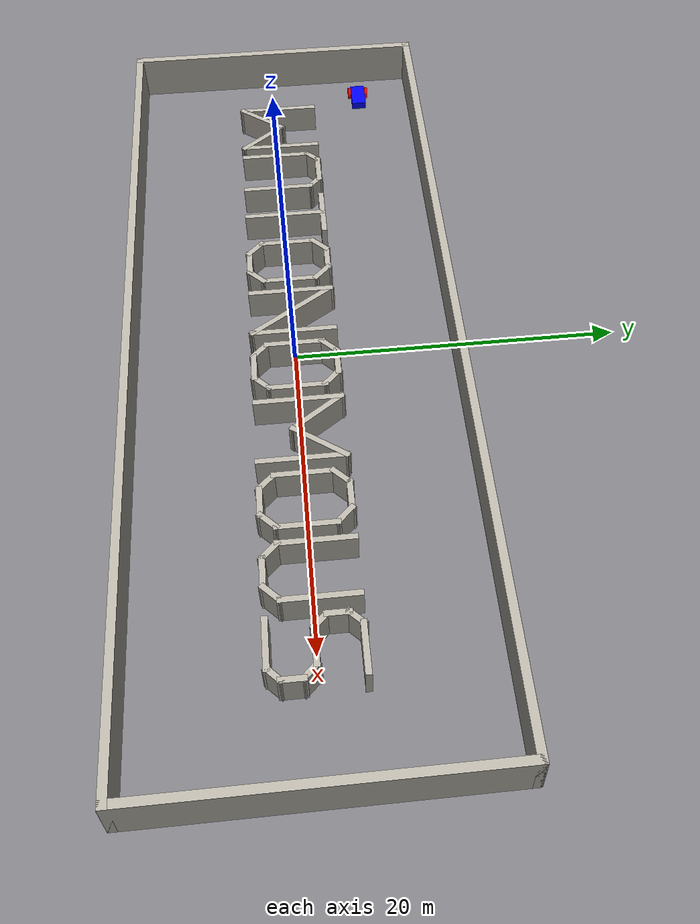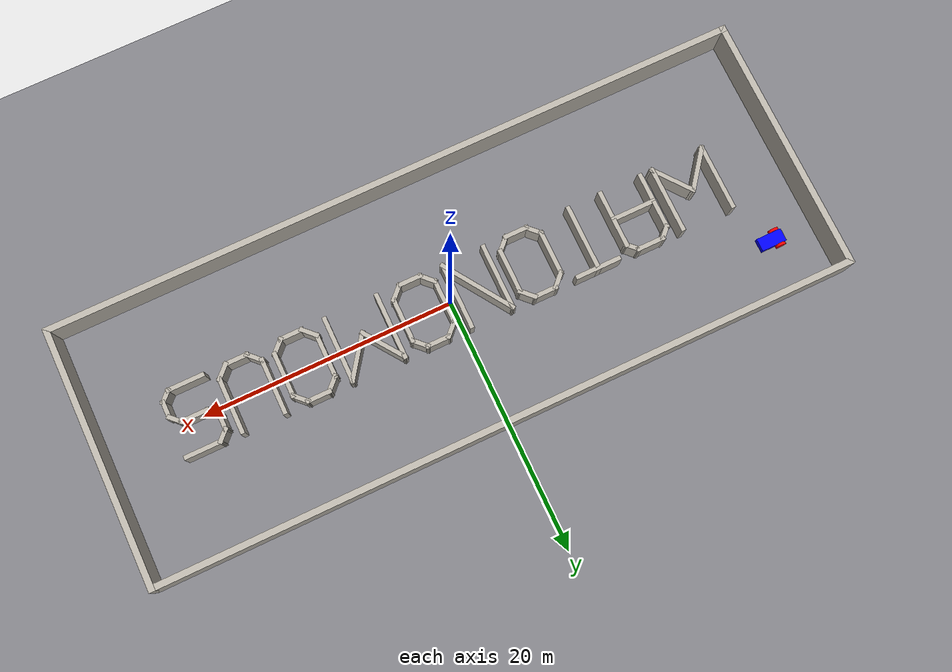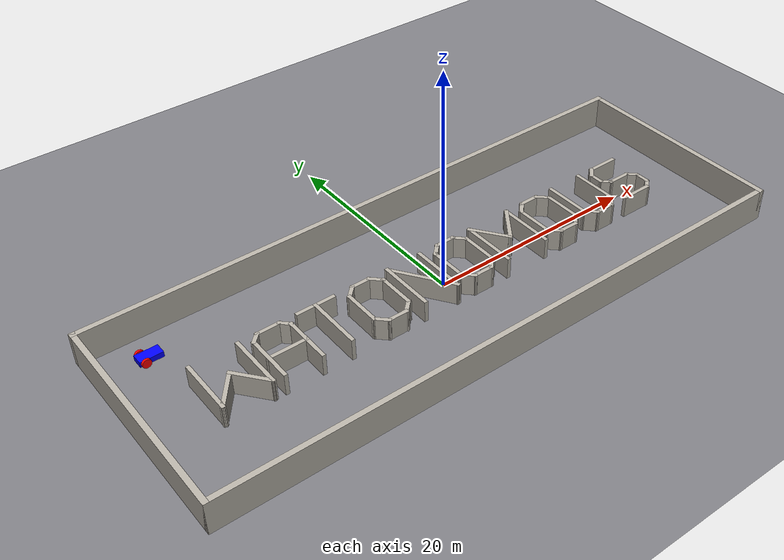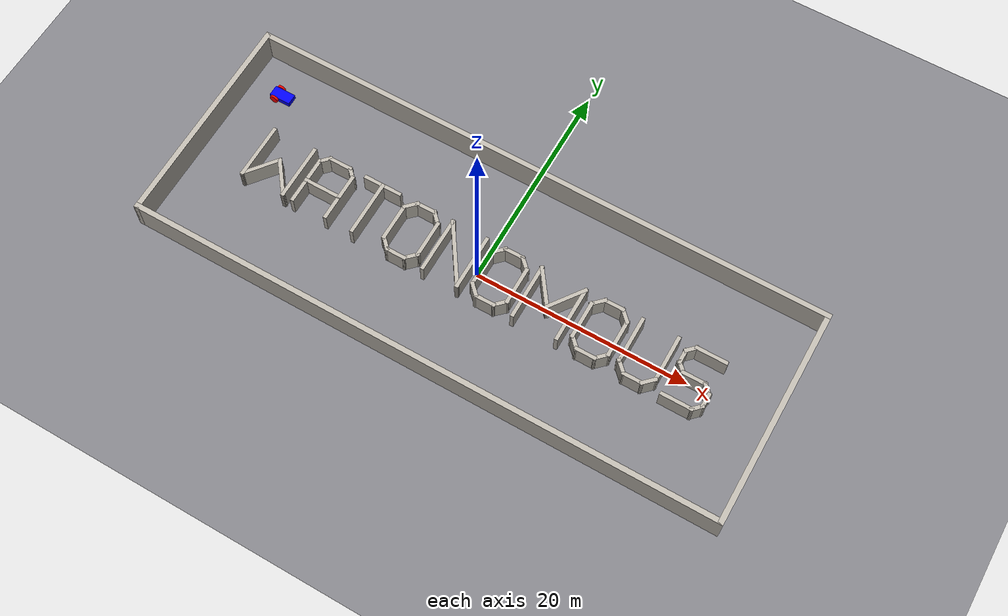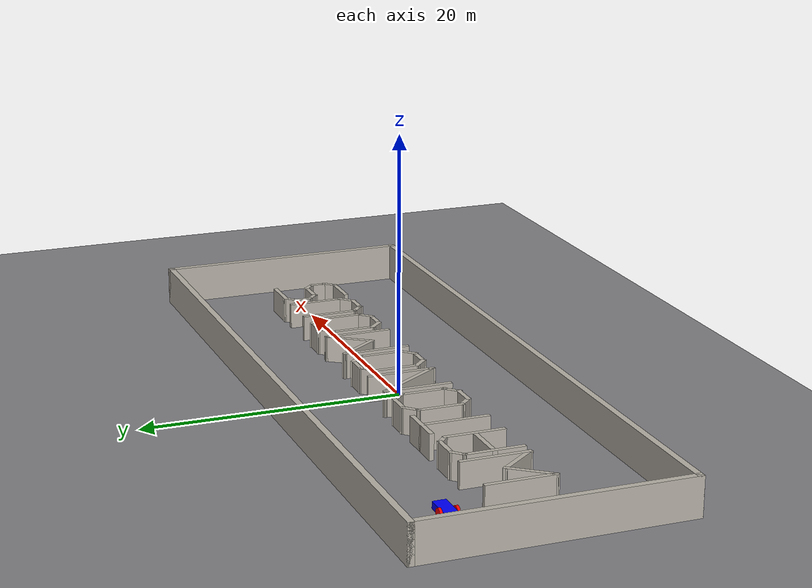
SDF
<?xml version="1.0" ?>
<!-- Generated by src/gazebo/tools/make_worlds.py from robot_env.sdf.
     Edit that script, not this file. -->
<sdf version="1.8">
    <world name="sim_world">
        <physics name="1ms" type="ignored">
            <max_step_size>0.001</max_step_size>
            <real_time_factor>1.0</real_time_factor>
        </physics>
        <plugin
            filename="ignition-gazebo-physics-system"
            name="ignition::gazebo::systems::Physics">
        </plugin>
        <plugin
            filename="ignition-gazebo-user-commands-system"
            name="ignition::gazebo::systems::UserCommands">
        </plugin>
        <plugin
            filename="ignition-gazebo-scene-broadcaster-system"
            name="ignition::gazebo::systems::SceneBroadcaster">
        </plugin>
        <plugin filename="ignition-gazebo-imu-system"
                name="ignition::gazebo::systems::Imu">
        </plugin>
        <plugin filename="ignition-gazebo-sensors-system"
                name="ignition::gazebo::systems::Sensors">
            <render_engine>ogre2</render_engine>
        </plugin>
        <plugin filename="ignition-gazebo-contact-system"
                name="ignition::gazebo::systems::Contact">
        </plugin>
        <gui fullscreen="0">
          <!-- 3D scene -->
          <plugin filename="MinimalScene" name="3D View">
          <gz-gui>
            <title>3D View</title>
            <property type="bool" key="showTitleBar">false</property>
            <property type="string" key="state">docked</property>
          </gz-gui>

          <engine>ogre2</engine>
          <scene>scene</scene>
          <ambient_light>0.4 0.4 0.4</ambient_light>
          <background_color>0.8 0.8 0.8</background_color>
          <camera_pose>-6 0 6 0 0.5 0</camera_pose>
          <camera_clip>
            <near>0.25</near>
            <far>25000</far>
          </camera_clip>
          </plugin>

          <!-- Plugins that add functionality to the scene -->
          <plugin filename="EntityContextMenuPlugin" name="Entity context menu">
          <gz-gui>
            <property key="state" type="string">floating</property>
            <property key="width" type="double">5</property>
            <property key="height" type="double">5</property>
            <property key="showTitleBar" type="bool">false</property>
          </gz-gui>
          </plugin>
          <plugin filename="GzSceneManager" name="Scene Manager">
          <gz-gui>
            <property key="resizable" type="bool">false</property>
            <property key="width" type="double">5</property>
            <property key="height" type="double">5</property>
            <property key="state" type="string">floating</property>
            <property key="showTitleBar" type="bool">false</property>
          </gz-gui>
          </plugin>
          <plugin filename="InteractiveViewControl" name="Interactive view control">
          <gz-gui>
            <property key="resizable" type="bool">false</property>
            <property key="width" type="double">5</property>
            <property key="height" type="double">5</property>
            <property key="state" type="string">floating</property>
            <property key="showTitleBar" type="bool">false</property>
          </gz-gui>
          </plugin>
          <plugin filename="CameraTracking" name="Camera Tracking">
          <gz-gui>
            <property key="resizable" type="bool">false</property>
            <property key="width" type="double">5</property>
            <property key="height" type="double">5</property>
            <property key="state" type="string">floating</property>
            <property key="showTitleBar" type="bool">false</property>
          </gz-gui>
          </plugin>
          <plugin filename="MarkerManager" name="Marker manager">
          <gz-gui>
            <property key="resizable" type="bool">false</property>
            <property key="width" type="double">5</property>
            <property key="height" type="double">5</property>
            <property key="state" type="string">floating</property>
            <property key="showTitleBar" type="bool">false</property>
          </gz-gui>
          </plugin>
          <plugin filename="SelectEntities" name="Select Entities">
          <gz-gui>
            <anchors target="Select entities">
              <line own="right" target="right"/>
              <line own="top" target="top"/>
            </anchors>
            <property key="resizable" type="bool">false</property>
            <property key="width" type="double">5</property>
            <property key="height" type="double">5</property>
            <property key="state" type="string">floating</property>
            <property key="showTitleBar" type="bool">false</property>
          </gz-gui>
          </plugin>
          <plugin filename="VisualizationCapabilities" name="Visualization Capabilities">
          <gz-gui>
            <property key="resizable" type="bool">false</property>
            <property key="width" type="double">5</property>
            <property key="height" type="double">5</property>
            <property key="state" type="string">floating</property>
            <property key="showTitleBar" type="bool">false</property>
          </gz-gui>
          </plugin>

          <plugin filename="Spawn" name="Spawn Entities">
          <gz-gui>
            <anchors target="Select entities">
              <line own="right" target="right"/>
              <line own="top" target="top"/>
            </anchors>
            <property key="resizable" type="bool">false</property>
            <property key="width" type="double">5</property>
            <property key="height" type="double">5</property>
            <property key="state" type="string">floating</property>
            <property key="showTitleBar" type="bool">false</property>
          </gz-gui>
          </plugin>

          <!-- World control -->
          <plugin filename="WorldControl" name="World control">
          <gz-gui>
            <title>World control</title>
            <property type="bool" key="showTitleBar">false</property>
            <property type="bool" key="resizable">false</property>
            <property type="double" key="height">72</property>
            <property type="double" key="width">121</property>
            <property type="double" key="z">1</property>

            <property type="string" key="state">floating</property>
            <anchors target="3D View">
              <line own="left" target="left"/>
              <line own="bottom" target="bottom"/>
            </anchors>
          </gz-gui>

          <play_pause>true</play_pause>
          <step>true</step>
          <start_paused>true</start_paused>
          <use_event>true</use_event>

          </plugin>

          <!-- World statistics -->
          <plugin filename="WorldStats" name="World stats">
          <gz-gui>
            <title>World stats</title>
            <property type="bool" key="showTitleBar">false</property>
            <property type="bool" key="resizable">false</property>
            <property type="double" key="height">110</property>
            <property type="double" key="width">290</property>
            <property type="double" key="z">1</property>

            <property type="string" key="state">floating</property>
            <anchors target="3D View">
              <line own="right" target="right"/>
              <line own="bottom" target="bottom"/>
            </anchors>
          </gz-gui>

          <sim_time>true</sim_time>
          <real_time>true</real_time>
          <real_time_factor>true</real_time_factor>
          <iterations>true</iterations>
          </plugin>

          <!-- Insert simple shapes -->
          <plugin filename="Shapes" name="Shapes">
          <gz-gui>
            <property key="resizable" type="bool">false</property>
            <property key="x" type="double">0</property>
            <property key="y" type="double">0</property>
            <property key="width" type="double">250</property>
            <property key="height" type="double">50</property>
            <property key="state" type="string">floating</property>
            <property key="showTitleBar" type="bool">false</property>
            <property key="cardBackground" type="string">#666666</property>
          </gz-gui>
          </plugin>

          <!-- Insert lights -->
          <plugin filename="Lights" name="Lights">
          <gz-gui>
            <property key="resizable" type="bool">false</property>
            <property key="x" type="double">250</property>
            <property key="y" type="double">0</property>
            <property key="width" type="double">150</property>
            <property key="height" type="double">50</property>
            <property key="state" type="string">floating</property>
            <property key="showTitleBar" type="bool">false</property>
            <property key="cardBackground" type="string">#666666</property>
          </gz-gui>
          </plugin>

          <!-- Translate / rotate -->
          <plugin filename="TransformControl" name="Transform control">
          <gz-gui>
            <property key="resizable" type="bool">false</property>
            <property key="x" type="double">0</property>
            <property key="y" type="double">50</property>
            <property key="width" type="double">250</property>
            <property key="height" type="double">50</property>
            <property key="state" type="string">floating</property>
            <property key="showTitleBar" type="bool">false</property>
            <property key="cardBackground" type="string">#777777</property>
          </gz-gui>
          </plugin>

          <!-- Screenshot -->
          <plugin filename="Screenshot" name="Screenshot">
          <gz-gui>
            <property key="resizable" type="bool">false</property>
            <property key="x" type="double">250</property>
            <property key="y" type="double">50</property>
            <property key="width" type="double">50</property>
            <property key="height" type="double">50</property>
            <property key="state" type="string">floating</property>
            <property key="showTitleBar" type="bool">false</property>
            <property key="cardBackground" type="string">#777777</property>
          </gz-gui>
          </plugin>

          <!-- Video recorder -->
          <plugin filename="VideoRecorder" name="VideoRecorder">
          <gz-gui>
            <property key="resizable" type="bool">false</property>
            <property key="x" type="double">300</property>
            <property key="y" type="double">50</property>
            <property key="width" type="double">50</property>
            <property key="height" type="double">50</property>
            <property key="state" type="string">floating</property>
            <property key="showTitleBar" type="bool">false</property>
            <property key="cardBackground" type="string">#777777</property>
          </gz-gui>

          <record_video>
            <use_sim_time>true</use_sim_time>
            <lockstep>false</lockstep>
            <bitrate>4000000</bitrate>
          </record_video>
          </plugin>

          <!-- Inspector -->
          <plugin filename="ComponentInspector" name="Component inspector">
          <gz-gui>
            <property type="string" key="state">docked_collapsed</property>
          </gz-gui>
          </plugin>

          <!-- Entity tree -->
          <plugin filename="EntityTree" name="Entity tree">
          <gz-gui>
            <property type="string" key="state">docked_collapsed</property>
          </gz-gui>
          </plugin>

          <!-- View angle -->
          <plugin filename="ViewAngle" name="View angle">
          <gz-gui>
            <property type="string" key="state">docked_collapsed</property>
          </gz-gui>
          </plugin>

            <!-- KeyPublisher plugin-->
            <plugin filename="KeyPublisher" name="Key Publisher"/>

        </gui>

        <light type="directional" name="sun">
            <cast_shadows>true</cast_shadows>
            <pose>0 0 10 0 0 0</pose>
            <diffuse>0.8 0.8 0.8 1</diffuse>
            <specular>0.2 0.2 0.2 1</specular>
            <attenuation>
                <range>1000</range>
                <constant>0.9</constant>
                <linear>0.01</linear>
                <quadratic>0.001</quadratic>
            </attenuation>
            <direction>-0.5 0.1 -0.9</direction>
        </light>

                <model name="environment">
            <static>true</static>
            <link name="ground">
                <collision name="collision"><geometry><plane><normal>0 0 1</normal></plane></geometry></collision>
                <visual name="visual">
                    <geometry><plane><normal>0 0 1</normal><size>100 100</size></plane></geometry>
                    <material><ambient>0.5 0.5 0.52 1</ambient><diffuse>0.5 0.5 0.52 1</diffuse><specular>0.1 0.1 0.1 1</specular></material>
                </visual>
            </link>
        </model>

        <model name='wall_north'>
            <static>true</static>
            <pose>0 10 1.5 0 0 0</pose>
            <link name='link'>
                <visual name='visual'><geometry><box><size>55.5 0.5 3</size></box></geometry><material><ambient>0.72 0.7 0.66 1</ambient><diffuse>0.72 0.7 0.66 1</diffuse><specular>0.1 0.1 0.1 1</specular></material></visual>
                <collision name='collision'><geometry><box><size>55.5 0.5 3</size></box></geometry></collision>
            </link>
        </model>

        <model name='wall_south'>
            <static>true</static>
            <pose>0 -10 1.5 0 0 0</pose>
            <link name='link'>
                <visual name='visual'><geometry><box><size>55.5 0.5 3</size></box></geometry><material><ambient>0.72 0.7 0.66 1</ambient><diffuse>0.72 0.7 0.66 1</diffuse><specular>0.1 0.1 0.1 1</specular></material></visual>
                <collision name='collision'><geometry><box><size>55.5 0.5 3</size></box></geometry></collision>
            </link>
        </model>

        <model name='wall_east'>
            <static>true</static>
            <pose>27.5 0 1.5 0 0 0</pose>
            <link name='link'>
                <visual name='visual'><geometry><box><size>0.5 20.5 3</size></box></geometry><material><ambient>0.72 0.7 0.66 1</ambient><diffuse>0.72 0.7 0.66 1</diffuse><specular>0.1 0.1 0.1 1</specular></material></visual>
                <collision name='collision'><geometry><box><size>0.5 20.5 3</size></box></geometry></collision>
            </link>
        </model>

        <model name='wall_west'>
            <static>true</static>
            <pose>-27.5 0 1.5 0 0 0</pose>
            <link name='link'>
                <visual name='visual'><geometry><box><size>0.5 20.5 3</size></box></geometry><material><ambient>0.72 0.7 0.66 1</ambient><diffuse>0.72 0.7 0.66 1</diffuse><specular>0.1 0.1 0.1 1</specular></material></visual>
                <collision name='collision'><geometry><box><size>0.5 20.5 3</size></box></geometry></collision>
            </link>
        </model>

        <model name='letter0_W_0_0'>
            <static>true</static>
            <pose>-22 0 1 0 0 -1.5708</pose>
            <link name='link'>
                <visual name='visual'><geometry><box><size>5.35 0.35 2</size></box></geometry><material><ambient>0.72 0.7 0.66 1</ambient><diffuse>0.72 0.7 0.66 1</diffuse><specular>0.1 0.1 0.1 1</specular></material></visual>
                <collision name='collision'><geometry><box><size>5.35 0.35 2</size></box></geometry></collision>
            </link>
        </model>

        <model name='letter0_W_0_1'>
            <static>true</static>
            <pose>-20.958 -1.1667 1 0 0 0.90759</pose>
            <link name='link'>
                <visual name='visual'><geometry><box><size>3.734 0.35 2</size></box></geometry><material><ambient>0.72 0.7 0.66 1</ambient><diffuse>0.72 0.7 0.66 1</diffuse><specular>0.1 0.1 0.1 1</specular></material></visual>
                <collision name='collision'><geometry><box><size>3.734 0.35 2</size></box></geometry></collision>
            </link>
        </model>

        <model name='letter0_W_0_2'>
            <static>true</static>
            <pose>-18.875 -1.1667 1 0 0 -0.90759</pose>
            <link name='link'>
                <visual name='visual'><geometry><box><size>3.734 0.35 2</size></box></geometry><material><ambient>0.72 0.7 0.66 1</ambient><diffuse>0.72 0.7 0.66 1</diffuse><specular>0.1 0.1 0.1 1</specular></material></visual>
                <collision name='collision'><geometry><box><size>3.734 0.35 2</size></box></geometry></collision>
            </link>
        </model>

        <model name='letter0_W_0_3'>
            <static>true</static>
            <pose>-17.833 0 1 0 0 1.5708</pose>
            <link name='link'>
                <visual name='visual'><geometry><box><size>5.35 0.35 2</size></box></geometry><material><ambient>0.72 0.7 0.66 1</ambient><diffuse>0.72 0.7 0.66 1</diffuse><specular>0.1 0.1 0.1 1</specular></material></visual>
                <collision name='collision'><geometry><box><size>5.35 0.35 2</size></box></geometry></collision>
            </link>
        </model>

        <model name='letter1_A_0_0'>
            <static>true</static>
            <pose>-16.833 -0.33333 1 0 0 1.5708</pose>
            <link name='link'>
                <visual name='visual'><geometry><box><size>4.6833 0.35 2</size></box></geometry><material><ambient>0.72 0.7 0.66 1</ambient><diffuse>0.72 0.7 0.66 1</diffuse><specular>0.1 0.1 0.1 1</specular></material></visual>
                <collision name='collision'><geometry><box><size>4.6833 0.35 2</size></box></geometry></collision>
            </link>
        </model>

        <model name='letter1_A_0_1'>
            <static>true</static>
            <pose>-16.5 2.1667 1 0 0 0.7854</pose>
            <link name='link'>
                <visual name='visual'><geometry><box><size>1.2928 0.35 2</size></box></geometry><material><ambient>0.72 0.7 0.66 1</ambient><diffuse>0.72 0.7 0.66 1</diffuse><specular>0.1 0.1 0.1 1</specular></material></visual>
                <collision name='collision'><geometry><box><size>1.2928 0.35 2</size></box></geometry></collision>
            </link>
        </model>

        <model name='letter1_A_0_2'>
            <static>true</static>
            <pose>-15.167 2.5 1 0 0 0</pose>
            <link name='link'>
                <visual name='visual'><geometry><box><size>2.35 0.35 2</size></box></geometry><material><ambient>0.72 0.7 0.66 1</ambient><diffuse>0.72 0.7 0.66 1</diffuse><specular>0.1 0.1 0.1 1</specular></material></visual>
                <collision name='collision'><geometry><box><size>2.35 0.35 2</size></box></geometry></collision>
            </link>
        </model>

        <model name='letter1_A_0_3'>
            <static>true</static>
            <pose>-13.833 2.1667 1 0 0 -0.7854</pose>
            <link name='link'>
                <visual name='visual'><geometry><box><size>1.2928 0.35 2</size></box></geometry><material><ambient>0.72 0.7 0.66 1</ambient><diffuse>0.72 0.7 0.66 1</diffuse><specular>0.1 0.1 0.1 1</specular></material></visual>
                <collision name='collision'><geometry><box><size>1.2928 0.35 2</size></box></geometry></collision>
            </link>
        </model>

        <model name='letter1_A_0_4'>
            <static>true</static>
            <pose>-13.5 -0.33333 1 0 0 -1.5708</pose>
            <link name='link'>
                <visual name='visual'><geometry><box><size>4.6833 0.35 2</size></box></geometry><material><ambient>0.72 0.7 0.66 1</ambient><diffuse>0.72 0.7 0.66 1</diffuse><specular>0.1 0.1 0.1 1</specular></material></visual>
                <collision name='collision'><geometry><box><size>4.6833 0.35 2</size></box></geometry></collision>
            </link>
        </model>

        <model name='letter1_A_1_0'>
            <static>true</static>
            <pose>-15.167 -0.33333 1 0 0 0</pose>
            <link name='link'>
                <visual name='visual'><geometry><box><size>3.6833 0.35 2</size></box></geometry><material><ambient>0.72 0.7 0.66 1</ambient><diffuse>0.72 0.7 0.66 1</diffuse><specular>0.1 0.1 0.1 1</specular></material></visual>
                <collision name='collision'><geometry><box><size>3.6833 0.35 2</size></box></geometry></collision>
            </link>
        </model>

        <model name='letter2_T_0_0'>
            <static>true</static>
            <pose>-10.833 2.5 1 0 0 0</pose>
            <link name='link'>
                <visual name='visual'><geometry><box><size>3.6833 0.35 2</size></box></geometry><material><ambient>0.72 0.7 0.66 1</ambient><diffuse>0.72 0.7 0.66 1</diffuse><specular>0.1 0.1 0.1 1</specular></material></visual>
                <collision name='collision'><geometry><box><size>3.6833 0.35 2</size></box></geometry></collision>
            </link>
        </model>

        <model name='letter2_T_1_0'>
            <static>true</static>
            <pose>-10.833 0 1 0 0 -1.5708</pose>
            <link name='link'>
                <visual name='visual'><geometry><box><size>5.35 0.35 2</size></box></geometry><material><ambient>0.72 0.7 0.66 1</ambient><diffuse>0.72 0.7 0.66 1</diffuse><specular>0.1 0.1 0.1 1</specular></material></visual>
                <collision name='collision'><geometry><box><size>5.35 0.35 2</size></box></geometry></collision>
            </link>
        </model>

        <model name='letter3_O_0_0'>
            <static>true</static>
            <pose>-6.5 -2.5 1 0 0 0</pose>
            <link name='link'>
                <visual name='visual'><geometry><box><size>2.0167 0.35 2</size></box></geometry><material><ambient>0.72 0.7 0.66 1</ambient><diffuse>0.72 0.7 0.66 1</diffuse><specular>0.1 0.1 0.1 1</specular></material></visual>
                <collision name='collision'><geometry><box><size>2.0167 0.35 2</size></box></geometry></collision>
            </link>
        </model>

        <model name='letter3_O_0_1'>
            <static>true</static>
            <pose>-5.25 -2.0833 1 0 0 0.7854</pose>
            <link name='link'>
                <visual name='visual'><geometry><box><size>1.5285 0.35 2</size></box></geometry><material><ambient>0.72 0.7 0.66 1</ambient><diffuse>0.72 0.7 0.66 1</diffuse><specular>0.1 0.1 0.1 1</specular></material></visual>
                <collision name='collision'><geometry><box><size>1.5285 0.35 2</size></box></geometry></collision>
            </link>
        </model>

        <model name='letter3_O_0_2'>
            <static>true</static>
            <pose>-4.8333 0 1 0 0 1.5708</pose>
            <link name='link'>
                <visual name='visual'><geometry><box><size>3.6833 0.35 2</size></box></geometry><material><ambient>0.72 0.7 0.66 1</ambient><diffuse>0.72 0.7 0.66 1</diffuse><specular>0.1 0.1 0.1 1</specular></material></visual>
                <collision name='collision'><geometry><box><size>3.6833 0.35 2</size></box></geometry></collision>
            </link>
        </model>

        <model name='letter3_O_0_3'>
            <static>true</static>
            <pose>-5.25 2.0833 1 0 0 2.3562</pose>
            <link name='link'>
                <visual name='visual'><geometry><box><size>1.5285 0.35 2</size></box></geometry><material><ambient>0.72 0.7 0.66 1</ambient><diffuse>0.72 0.7 0.66 1</diffuse><specular>0.1 0.1 0.1 1</specular></material></visual>
                <collision name='collision'><geometry><box><size>1.5285 0.35 2</size></box></geometry></collision>
            </link>
        </model>

        <model name='letter3_O_0_4'>
            <static>true</static>
            <pose>-6.5 2.5 1 0 0 3.1416</pose>
            <link name='link'>
                <visual name='visual'><geometry><box><size>2.0167 0.35 2</size></box></geometry><material><ambient>0.72 0.7 0.66 1</ambient><diffuse>0.72 0.7 0.66 1</diffuse><specular>0.1 0.1 0.1 1</specular></material></visual>
                <collision name='collision'><geometry><box><size>2.0167 0.35 2</size></box></geometry></collision>
            </link>
        </model>

        <model name='letter3_O_0_5'>
            <static>true</static>
            <pose>-7.75 2.0833 1 0 0 -2.3562</pose>
            <link name='link'>
                <visual name='visual'><geometry><box><size>1.5285 0.35 2</size></box></geometry><material><ambient>0.72 0.7 0.66 1</ambient><diffuse>0.72 0.7 0.66 1</diffuse><specular>0.1 0.1 0.1 1</specular></material></visual>
                <collision name='collision'><geometry><box><size>1.5285 0.35 2</size></box></geometry></collision>
            </link>
        </model>

        <model name='letter3_O_0_6'>
            <static>true</static>
            <pose>-8.1667 0 1 0 0 -1.5708</pose>
            <link name='link'>
                <visual name='visual'><geometry><box><size>3.6833 0.35 2</size></box></geometry><material><ambient>0.72 0.7 0.66 1</ambient><diffuse>0.72 0.7 0.66 1</diffuse><specular>0.1 0.1 0.1 1</specular></material></visual>
                <collision name='collision'><geometry><box><size>3.6833 0.35 2</size></box></geometry></collision>
            </link>
        </model>

        <model name='letter3_O_0_7'>
            <static>true</static>
            <pose>-7.75 -2.0833 1 0 0 -0.7854</pose>
            <link name='link'>
                <visual name='visual'><geometry><box><size>1.5285 0.35 2</size></box></geometry><material><ambient>0.72 0.7 0.66 1</ambient><diffuse>0.72 0.7 0.66 1</diffuse><specular>0.1 0.1 0.1 1</specular></material></visual>
                <collision name='collision'><geometry><box><size>1.5285 0.35 2</size></box></geometry></collision>
            </link>
        </model>

        <model name='letter4_N_0_0'>
            <static>true</static>
            <pose>-3.8333 0 1 0 0 1.5708</pose>
            <link name='link'>
                <visual name='visual'><geometry><box><size>5.35 0.35 2</size></box></geometry><material><ambient>0.72 0.7 0.66 1</ambient><diffuse>0.72 0.7 0.66 1</diffuse><specular>0.1 0.1 0.1 1</specular></material></visual>
                <collision name='collision'><geometry><box><size>5.35 0.35 2</size></box></geometry></collision>
            </link>
        </model>

        <model name='letter4_N_0_1'>
            <static>true</static>
            <pose>-2.1667 0 1 0 0 -0.98279</pose>
            <link name='link'>
                <visual name='visual'><geometry><box><size>6.3593 0.35 2</size></box></geometry><material><ambient>0.72 0.7 0.66 1</ambient><diffuse>0.72 0.7 0.66 1</diffuse><specular>0.1 0.1 0.1 1</specular></material></visual>
                <collision name='collision'><geometry><box><size>6.3593 0.35 2</size></box></geometry></collision>
            </link>
        </model>

        <model name='letter4_N_0_2'>
            <static>true</static>
            <pose>-0.5 0 1 0 0 1.5708</pose>
            <link name='link'>
                <visual name='visual'><geometry><box><size>5.35 0.35 2</size></box></geometry><material><ambient>0.72 0.7 0.66 1</ambient><diffuse>0.72 0.7 0.66 1</diffuse><specular>0.1 0.1 0.1 1</specular></material></visual>
                <collision name='collision'><geometry><box><size>5.35 0.35 2</size></box></geometry></collision>
            </link>
        </model>

        <model name='letter5_O_0_0'>
            <static>true</static>
            <pose>2.1667 -2.5 1 0 0 0</pose>
            <link name='link'>
                <visual name='visual'><geometry><box><size>2.0167 0.35 2</size></box></geometry><material><ambient>0.72 0.7 0.66 1</ambient><diffuse>0.72 0.7 0.66 1</diffuse><specular>0.1 0.1 0.1 1</specular></material></visual>
                <collision name='collision'><geometry><box><size>2.0167 0.35 2</size></box></geometry></collision>
            </link>
        </model>

        <model name='letter5_O_0_1'>
            <static>true</static>
            <pose>3.4167 -2.0833 1 0 0 0.7854</pose>
            <link name='link'>
                <visual name='visual'><geometry><box><size>1.5285 0.35 2</size></box></geometry><material><ambient>0.72 0.7 0.66 1</ambient><diffuse>0.72 0.7 0.66 1</diffuse><specular>0.1 0.1 0.1 1</specular></material></visual>
                <collision name='collision'><geometry><box><size>1.5285 0.35 2</size></box></geometry></collision>
            </link>
        </model>

        <model name='letter5_O_0_2'>
            <static>true</static>
            <pose>3.8333 0 1 0 0 1.5708</pose>
            <link name='link'>
                <visual name='visual'><geometry><box><size>3.6833 0.35 2</size></box></geometry><material><ambient>0.72 0.7 0.66 1</ambient><diffuse>0.72 0.7 0.66 1</diffuse><specular>0.1 0.1 0.1 1</specular></material></visual>
                <collision name='collision'><geometry><box><size>3.6833 0.35 2</size></box></geometry></collision>
            </link>
        </model>

        <model name='letter5_O_0_3'>
            <static>true</static>
            <pose>3.4167 2.0833 1 0 0 2.3562</pose>
            <link name='link'>
                <visual name='visual'><geometry><box><size>1.5285 0.35 2</size></box></geometry><material><ambient>0.72 0.7 0.66 1</ambient><diffuse>0.72 0.7 0.66 1</diffuse><specular>0.1 0.1 0.1 1</specular></material></visual>
                <collision name='collision'><geometry><box><size>1.5285 0.35 2</size></box></geometry></collision>
            </link>
        </model>

        <model name='letter5_O_0_4'>
            <static>true</static>
            <pose>2.1667 2.5 1 0 0 3.1416</pose>
            <link name='link'>
                <visual name='visual'><geometry><box><size>2.0167 0.35 2</size></box></geometry><material><ambient>0.72 0.7 0.66 1</ambient><diffuse>0.72 0.7 0.66 1</diffuse><specular>0.1 0.1 0.1 1</specular></material></visual>
                <collision name='collision'><geometry><box><size>2.0167 0.35 2</size></box></geometry></collision>
            </link>
        </model>

        <model name='letter5_O_0_5'>
            <static>true</static>
            <pose>0.91667 2.0833 1 0 0 -2.3562</pose>
            <link name='link'>
                <visual name='visual'><geometry><box><size>1.5285 0.35 2</size></box></geometry><material><ambient>0.72 0.7 0.66 1</ambient><diffuse>0.72 0.7 0.66 1</diffuse><specular>0.1 0.1 0.1 1</specular></material></visual>
                <collision name='collision'><geometry><box><size>1.5285 0.35 2</size></box></geometry></collision>
            </link>
        </model>

        <model name='letter5_O_0_6'>
            <static>true</static>
            <pose>0.5 0 1 0 0 -1.5708</pose>
            <link name='link'>
                <visual name='visual'><geometry><box><size>3.6833 0.35 2</size></box></geometry><material><ambient>0.72 0.7 0.66 1</ambient><diffuse>0.72 0.7 0.66 1</diffuse><specular>0.1 0.1 0.1 1</specular></material></visual>
                <collision name='collision'><geometry><box><size>3.6833 0.35 2</size></box></geometry></collision>
            </link>
        </model>

        <model name='letter5_O_0_7'>
            <static>true</static>
            <pose>0.91667 -2.0833 1 0 0 -0.7854</pose>
            <link name='link'>
                <visual name='visual'><geometry><box><size>1.5285 0.35 2</size></box></geometry><material><ambient>0.72 0.7 0.66 1</ambient><diffuse>0.72 0.7 0.66 1</diffuse><specular>0.1 0.1 0.1 1</specular></material></visual>
                <collision name='collision'><geometry><box><size>1.5285 0.35 2</size></box></geometry></collision>
            </link>
        </model>

        <model name='letter6_M_0_0'>
            <static>true</static>
            <pose>4.8333 0 1 0 0 1.5708</pose>
            <link name='link'>
                <visual name='visual'><geometry><box><size>5.35 0.35 2</size></box></geometry><material><ambient>0.72 0.7 0.66 1</ambient><diffuse>0.72 0.7 0.66 1</diffuse><specular>0.1 0.1 0.1 1</specular></material></visual>
                <collision name='collision'><geometry><box><size>5.35 0.35 2</size></box></geometry></collision>
            </link>
        </model>

        <model name='letter6_M_0_1'>
            <static>true</static>
            <pose>5.875 1.0417 1 0 0 -0.95055</pose>
            <link name='link'>
                <visual name='visual'><geometry><box><size>3.9343 0.35 2</size></box></geometry><material><ambient>0.72 0.7 0.66 1</ambient><diffuse>0.72 0.7 0.66 1</diffuse><specular>0.1 0.1 0.1 1</specular></material></visual>
                <collision name='collision'><geometry><box><size>3.9343 0.35 2</size></box></geometry></collision>
            </link>
        </model>

        <model name='letter6_M_0_2'>
            <static>true</static>
            <pose>7.9583 1.0417 1 0 0 0.95055</pose>
            <link name='link'>
                <visual name='visual'><geometry><box><size>3.9343 0.35 2</size></box></geometry><material><ambient>0.72 0.7 0.66 1</ambient><diffuse>0.72 0.7 0.66 1</diffuse><specular>0.1 0.1 0.1 1</specular></material></visual>
                <collision name='collision'><geometry><box><size>3.9343 0.35 2</size></box></geometry></collision>
            </link>
        </model>

        <model name='letter6_M_0_3'>
            <static>true</static>
            <pose>9 0 1 0 0 -1.5708</pose>
            <link name='link'>
                <visual name='visual'><geometry><box><size>5.35 0.35 2</size></box></geometry><material><ambient>0.72 0.7 0.66 1</ambient><diffuse>0.72 0.7 0.66 1</diffuse><specular>0.1 0.1 0.1 1</specular></material></visual>
                <collision name='collision'><geometry><box><size>5.35 0.35 2</size></box></geometry></collision>
            </link>
        </model>

        <model name='letter7_O_0_0'>
            <static>true</static>
            <pose>11.667 -2.5 1 0 0 0</pose>
            <link name='link'>
                <visual name='visual'><geometry><box><size>2.0167 0.35 2</size></box></geometry><material><ambient>0.72 0.7 0.66 1</ambient><diffuse>0.72 0.7 0.66 1</diffuse><specular>0.1 0.1 0.1 1</specular></material></visual>
                <collision name='collision'><geometry><box><size>2.0167 0.35 2</size></box></geometry></collision>
            </link>
        </model>

        <model name='letter7_O_0_1'>
            <static>true</static>
            <pose>12.917 -2.0833 1 0 0 0.7854</pose>
            <link name='link'>
                <visual name='visual'><geometry><box><size>1.5285 0.35 2</size></box></geometry><material><ambient>0.72 0.7 0.66 1</ambient><diffuse>0.72 0.7 0.66 1</diffuse><specular>0.1 0.1 0.1 1</specular></material></visual>
                <collision name='collision'><geometry><box><size>1.5285 0.35 2</size></box></geometry></collision>
            </link>
        </model>

        <model name='letter7_O_0_2'>
            <static>true</static>
            <pose>13.333 0 1 0 0 1.5708</pose>
            <link name='link'>
                <visual name='visual'><geometry><box><size>3.6833 0.35 2</size></box></geometry><material><ambient>0.72 0.7 0.66 1</ambient><diffuse>0.72 0.7 0.66 1</diffuse><specular>0.1 0.1 0.1 1</specular></material></visual>
                <collision name='collision'><geometry><box><size>3.6833 0.35 2</size></box></geometry></collision>
            </link>
        </model>

        <model name='letter7_O_0_3'>
            <static>true</static>
            <pose>12.917 2.0833 1 0 0 2.3562</pose>
            <link name='link'>
                <visual name='visual'><geometry><box><size>1.5285 0.35 2</size></box></geometry><material><ambient>0.72 0.7 0.66 1</ambient><diffuse>0.72 0.7 0.66 1</diffuse><specular>0.1 0.1 0.1 1</specular></material></visual>
                <collision name='collision'><geometry><box><size>1.5285 0.35 2</size></box></geometry></collision>
            </link>
        </model>

        <model name='letter7_O_0_4'>
            <static>true</static>
            <pose>11.667 2.5 1 0 0 3.1416</pose>
            <link name='link'>
                <visual name='visual'><geometry><box><size>2.0167 0.35 2</size></box></geometry><material><ambient>0.72 0.7 0.66 1</ambient><diffuse>0.72 0.7 0.66 1</diffuse><specular>0.1 0.1 0.1 1</specular></material></visual>
                <collision name='collision'><geometry><box><size>2.0167 0.35 2</size></box></geometry></collision>
            </link>
        </model>

        <model name='letter7_O_0_5'>
            <static>true</static>
            <pose>10.417 2.0833 1 0 0 -2.3562</pose>
            <link name='link'>
                <visual name='visual'><geometry><box><size>1.5285 0.35 2</size></box></geometry><material><ambient>0.72 0.7 0.66 1</ambient><diffuse>0.72 0.7 0.66 1</diffuse><specular>0.1 0.1 0.1 1</specular></material></visual>
                <collision name='collision'><geometry><box><size>1.5285 0.35 2</size></box></geometry></collision>
            </link>
        </model>

        <model name='letter7_O_0_6'>
            <static>true</static>
            <pose>10 0 1 0 0 -1.5708</pose>
            <link name='link'>
                <visual name='visual'><geometry><box><size>3.6833 0.35 2</size></box></geometry><material><ambient>0.72 0.7 0.66 1</ambient><diffuse>0.72 0.7 0.66 1</diffuse><specular>0.1 0.1 0.1 1</specular></material></visual>
                <collision name='collision'><geometry><box><size>3.6833 0.35 2</size></box></geometry></collision>
            </link>
        </model>

        <model name='letter7_O_0_7'>
            <static>true</static>
            <pose>10.417 -2.0833 1 0 0 -0.7854</pose>
            <link name='link'>
                <visual name='visual'><geometry><box><size>1.5285 0.35 2</size></box></geometry><material><ambient>0.72 0.7 0.66 1</ambient><diffuse>0.72 0.7 0.66 1</diffuse><specular>0.1 0.1 0.1 1</specular></material></visual>
                <collision name='collision'><geometry><box><size>1.5285 0.35 2</size></box></geometry></collision>
            </link>
        </model>

        <model name='letter8_U_0_0'>
            <static>true</static>
            <pose>14.333 0.41667 1 0 0 -1.5708</pose>
            <link name='link'>
                <visual name='visual'><geometry><box><size>4.5167 0.35 2</size></box></geometry><material><ambient>0.72 0.7 0.66 1</ambient><diffuse>0.72 0.7 0.66 1</diffuse><specular>0.1 0.1 0.1 1</specular></material></visual>
                <collision name='collision'><geometry><box><size>4.5167 0.35 2</size></box></geometry></collision>
            </link>
        </model>

        <model name='letter8_U_0_1'>
            <static>true</static>
            <pose>14.75 -2.0833 1 0 0 -0.7854</pose>
            <link name='link'>
                <visual name='visual'><geometry><box><size>1.5285 0.35 2</size></box></geometry><material><ambient>0.72 0.7 0.66 1</ambient><diffuse>0.72 0.7 0.66 1</diffuse><specular>0.1 0.1 0.1 1</specular></material></visual>
                <collision name='collision'><geometry><box><size>1.5285 0.35 2</size></box></geometry></collision>
            </link>
        </model>

        <model name='letter8_U_0_2'>
            <static>true</static>
            <pose>16 -2.5 1 0 0 0</pose>
            <link name='link'>
                <visual name='visual'><geometry><box><size>2.0167 0.35 2</size></box></geometry><material><ambient>0.72 0.7 0.66 1</ambient><diffuse>0.72 0.7 0.66 1</diffuse><specular>0.1 0.1 0.1 1</specular></material></visual>
                <collision name='collision'><geometry><box><size>2.0167 0.35 2</size></box></geometry></collision>
            </link>
        </model>

        <model name='letter8_U_0_3'>
            <static>true</static>
            <pose>17.25 -2.0833 1 0 0 0.7854</pose>
            <link name='link'>
                <visual name='visual'><geometry><box><size>1.5285 0.35 2</size></box></geometry><material><ambient>0.72 0.7 0.66 1</ambient><diffuse>0.72 0.7 0.66 1</diffuse><specular>0.1 0.1 0.1 1</specular></material></visual>
                <collision name='collision'><geometry><box><size>1.5285 0.35 2</size></box></geometry></collision>
            </link>
        </model>

        <model name='letter8_U_0_4'>
            <static>true</static>
            <pose>17.667 0.41667 1 0 0 1.5708</pose>
            <link name='link'>
                <visual name='visual'><geometry><box><size>4.5167 0.35 2</size></box></geometry><material><ambient>0.72 0.7 0.66 1</ambient><diffuse>0.72 0.7 0.66 1</diffuse><specular>0.1 0.1 0.1 1</specular></material></visual>
                <collision name='collision'><geometry><box><size>4.5167 0.35 2</size></box></geometry></collision>
            </link>
        </model>

        <model name='letter9_S_0_0'>
            <static>true</static>
            <pose>20.667 2.5 1 0 0 3.1416</pose>
            <link name='link'>
                <visual name='visual'><geometry><box><size>3.0167 0.35 2</size></box></geometry><material><ambient>0.72 0.7 0.66 1</ambient><diffuse>0.72 0.7 0.66 1</diffuse><specular>0.1 0.1 0.1 1</specular></material></visual>
                <collision name='collision'><geometry><box><size>3.0167 0.35 2</size></box></geometry></collision>
            </link>
        </model>

        <model name='letter9_S_0_1'>
            <static>true</static>
            <pose>19 2.1667 1 0 0 -2.3562</pose>
            <link name='link'>
                <visual name='visual'><geometry><box><size>1.2928 0.35 2</size></box></geometry><material><ambient>0.72 0.7 0.66 1</ambient><diffuse>0.72 0.7 0.66 1</diffuse><specular>0.1 0.1 0.1 1</specular></material></visual>
                <collision name='collision'><geometry><box><size>1.2928 0.35 2</size></box></geometry></collision>
            </link>
        </model>

        <model name='letter9_S_0_2'>
            <static>true</static>
            <pose>18.667 1.25 1 0 0 -1.5708</pose>
            <link name='link'>
                <visual name='visual'><geometry><box><size>1.5167 0.35 2</size></box></geometry><material><ambient>0.72 0.7 0.66 1</ambient><diffuse>0.72 0.7 0.66 1</diffuse><specular>0.1 0.1 0.1 1</specular></material></visual>
                <collision name='collision'><geometry><box><size>1.5167 0.35 2</size></box></geometry></collision>
            </link>
        </model>

        <model name='letter9_S_0_3'>
            <static>true</static>
            <pose>19 0.33333 1 0 0 -0.7854</pose>
            <link name='link'>
                <visual name='visual'><geometry><box><size>1.2928 0.35 2</size></box></geometry><material><ambient>0.72 0.7 0.66 1</ambient><diffuse>0.72 0.7 0.66 1</diffuse><specular>0.1 0.1 0.1 1</specular></material></visual>
                <collision name='collision'><geometry><box><size>1.2928 0.35 2</size></box></geometry></collision>
            </link>
        </model>

        <model name='letter9_S_0_4'>
            <static>true</static>
            <pose>20.333 0 1 0 0 0</pose>
            <link name='link'>
                <visual name='visual'><geometry><box><size>2.35 0.35 2</size></box></geometry><material><ambient>0.72 0.7 0.66 1</ambient><diffuse>0.72 0.7 0.66 1</diffuse><specular>0.1 0.1 0.1 1</specular></material></visual>
                <collision name='collision'><geometry><box><size>2.35 0.35 2</size></box></geometry></collision>
            </link>
        </model>

        <model name='letter9_S_0_5'>
            <static>true</static>
            <pose>21.667 -0.33333 1 0 0 -0.7854</pose>
            <link name='link'>
                <visual name='visual'><geometry><box><size>1.2928 0.35 2</size></box></geometry><material><ambient>0.72 0.7 0.66 1</ambient><diffuse>0.72 0.7 0.66 1</diffuse><specular>0.1 0.1 0.1 1</specular></material></visual>
                <collision name='collision'><geometry><box><size>1.2928 0.35 2</size></box></geometry></collision>
            </link>
        </model>

        <model name='letter9_S_0_6'>
            <static>true</static>
            <pose>22 -1.25 1 0 0 -1.5708</pose>
            <link name='link'>
                <visual name='visual'><geometry><box><size>1.5167 0.35 2</size></box></geometry><material><ambient>0.72 0.7 0.66 1</ambient><diffuse>0.72 0.7 0.66 1</diffuse><specular>0.1 0.1 0.1 1</specular></material></visual>
                <collision name='collision'><geometry><box><size>1.5167 0.35 2</size></box></geometry></collision>
            </link>
        </model>

        <model name='letter9_S_0_7'>
            <static>true</static>
            <pose>21.667 -2.1667 1 0 0 -2.3562</pose>
            <link name='link'>
                <visual name='visual'><geometry><box><size>1.2928 0.35 2</size></box></geometry><material><ambient>0.72 0.7 0.66 1</ambient><diffuse>0.72 0.7 0.66 1</diffuse><specular>0.1 0.1 0.1 1</specular></material></visual>
                <collision name='collision'><geometry><box><size>1.2928 0.35 2</size></box></geometry></collision>
            </link>
        </model>

        <model name='letter9_S_0_8'>
            <static>true</static>
            <pose>20 -2.5 1 0 0 3.1416</pose>
            <link name='link'>
                <visual name='visual'><geometry><box><size>3.0167 0.35 2</size></box></geometry><material><ambient>0.72 0.7 0.66 1</ambient><diffuse>0.72 0.7 0.66 1</diffuse><specular>0.1 0.1 0.1 1</specular></material></visual>
                <collision name='collision'><geometry><box><size>3.0167 0.35 2</size></box></geometry></collision>
            </link>
        </model>

        <model name='robot' canonical_link='chassis'>
            <pose relative_to='world'>-24 6 1 0 0 0</pose>   <!--the pose is relative to the world by default-->

            <frame name="lidar_frame" attached_to='chassis'>
                <pose>0.8 0 0.5 0 0 0</pose>
            </frame>

            <frame name="camera_frame" attached_to='chassis'>
                <pose>0.8 0 0.5 0 0 0</pose>
            </frame>

            <frame name="camera_optical_frame" attached_to='camera_frame'>
                <pose>0 0 0 -1.57 0 -1.57</pose>
            </frame>

            <link name='chassis'>
                <pose relative_to='__model__'>0.5 0 0.4 0 0 0</pose>
                <inertial> <!--inertial properties of the link mass, inertia matix-->
                    <mass>1.14395</mass>
                    <inertia>
                        <ixx>0.126164</ixx>
                        <ixy>0</ixy>
                        <ixz>0</ixz>
                        <iyy>0.416519</iyy>
                        <iyz>0</iyz>
                        <izz>0.481014</izz>
                    </inertia>
                </inertial>
                <visual name='visual'>
                    <geometry>
                        <box>
                            <size>2.0 1.0 0.5</size> <!--question: this size is in meter-->
                        </box>
                    </geometry>
                    <!--let's add color to our link-->
                    <material>
                        <ambient>0.0 0.0 1.0 1</ambient>
                        <diffuse>0.0 0.0 1.0 1</diffuse>
                        <specular>0.0 0.0 1.0 1</specular>
                    </material>
                </visual>
                <collision name='collision'> <!--todo: describe why we need the collision-->
                    <geometry>
                        <box>
                            <size>2.0 1.0 0.5</size>
                        </box>
                    </geometry>
                </collision>
                <sensor name="imu_sensor" type="imu">
                    <always_on>1</always_on>
                    <update_rate>1</update_rate>
                    <visualize>true</visualize>
                    <topic>imu</topic>
                </sensor>
                <sensor name='lidar' type='gpu_lidar'>"
                    <pose relative_to='lidar_frame'>0 0 0 0 0 0</pose>
                    <topic>lidar</topic>
                    <update_rate>10</update_rate>
                    <ray>
                    <scan>
                        <horizontal>
                            <samples>256</samples>
                            <resolution>1</resolution>
                            <min_angle>-3.14159</min_angle>
                            <max_angle>3.14159</max_angle>
                        </horizontal>
                        <vertical>
                            <samples>1</samples>
                            <resolution>1</resolution>
                            <min_angle>0</min_angle>
                            <max_angle>0</max_angle>
                        </vertical>
                    </scan>
                    <range>
                        <min>0.08</min>
                        <max>20.0</max>
                        <resolution>0.01</resolution>
                    </range>
                    </ray>
                    <alwaysOn>1</alwaysOn>
                    <visualize>true</visualize>
                </sensor>

                <sensor name="camera" type="camera">
                    <pose relative_to="camera_frame">0 0 0 0 0 0</pose>
                    <camera>
                        <horizontal_fov>1.047</horizontal_fov>
                        <image>
                            <width>320</width>
                            <height>240</height>
                        </image>
                        <clip>
                            <near>0.1</near>
                            <far>100</far>
                        </clip>
                    </camera>
                    <always_on>1</always_on>
                    <update_rate>30</update_rate>
                    <visualize>true</visualize>
                    <topic>camera</topic>
                </sensor>
            </link>

            <!--let's build the left wheel-->
            <link name='left_wheel'>
                <pose relative_to="chassis">-0.5 0.6 0 -1.5707 0 0</pose> <!--angles are in radian-->
                <inertial>
                    <mass>2</mass>
                    <inertia>
                        <ixx>0.145833</ixx>
                        <ixy>0</ixy>
                        <ixz>0</ixz>
                        <iyy>0.145833</iyy>
                        <iyz>0</iyz>
                        <izz>0.125</izz>
                    </inertia>
                </inertial>
                <visual name='visual'>
                    <geometry>
                        <cylinder>
                            <radius>0.4</radius>
                            <length>0.2</length>
                        </cylinder>
                    </geometry>
                    <material>
                        <ambient>1.0 0.0 0.0 1</ambient>
                        <diffuse>1.0 0.0 0.0 1</diffuse>
                        <specular>1.0 0.0 0.0 1</specular>
                    </material>
                </visual>
                <collision name='collision'>
                    <geometry>
                        <cylinder>
                            <radius>0.4</radius>
                            <length>0.2</length>
                        </cylinder>
                    </geometry>
                </collision>
            </link>

            <!--copy and paste for right wheel but change position-->
            <link name='right_wheel'>
                <pose relative_to="chassis">-0.5 -0.6 0 -1.5707 0 0</pose> <!--angles are in radian-->
                <inertial>
                    <mass>1</mass>
                    <inertia>
                        <ixx>0.145833</ixx>
                        <ixy>0</ixy>
                        <ixz>0</ixz>
                        <iyy>0.145833</iyy>
                        <iyz>0</iyz>
                        <izz>0.125</izz>
                    </inertia>
                </inertial>
                <visual name='visual'>
                    <geometry>
                        <cylinder>
                            <radius>0.4</radius>
                            <length>0.2</length>
                        </cylinder>
                    </geometry>
                    <material>
                        <ambient>1.0 0.0 0.0 1</ambient>
                        <diffuse>1.0 0.0 0.0 1</diffuse>
                        <specular>1.0 0.0 0.0 1</specular>
                    </material>
                </visual>
                <collision name='collision'>
                    <geometry>
                        <cylinder>
                            <radius>0.4</radius>
                            <length>0.2</length>
                        </cylinder>
                    </geometry>
                </collision>
            </link>

            <frame name="caster_frame" attached_to='chassis'>
                <pose>0.8 0 -0.2 0 0 0</pose>
            </frame>

            <!--caster wheel-->
            <link name='caster'>
                <pose relative_to='caster_frame'/>
                <inertial>
                    <mass>1</mass>
                    <inertia>
                        <ixx>0.1</ixx>
                        <ixy>0</ixy>
                        <ixz>0</ixz>
                        <iyy>0.1</iyy>
                        <iyz>0</iyz>
                        <izz>0.1</izz>
                    </inertia>
                </inertial>
                <visual name='visual'>
                    <geometry>
                        <sphere>
                            <radius>0.2</radius>
                        </sphere>
                    </geometry>
                    <material>
                        <ambient>0.0 1 0.0 1</ambient>
                        <diffuse>0.0 1 0.0 1</diffuse>
                        <specular>0.0 1 0.0 1</specular>
                    </material>
                </visual>
                <collision name='collision'>
                    <geometry>
                        <sphere>
                            <radius>0.2</radius>
                        </sphere>
                    </geometry>
                </collision>
            </link>

            <!--connecting these links together using joints-->
            <joint name='left_wheel_joint' type='revolute'> <!--continous joint is not supported yet-->
                <pose relative_to='left_wheel'/>
                <parent>chassis</parent>
                <child>left_wheel</child>
                <axis>
                    <xyz expressed_in='__model__'>0 1 0</xyz> <!--can be descired to any frame or even arbitrary frames-->
                    <limit>
                        <lower>-1.79769e+308</lower>    <!--negative infinity-->
                        <upper>1.79769e+308</upper>     <!--positive infinity-->
                    </limit>
                </axis>
            </joint>

            <joint name='right_wheel_joint' type='revolute'>
                <pose relative_to='right_wheel'/>
                <parent>chassis</parent>
                <child>right_wheel</child>
                <axis>
                    <xyz expressed_in='__model__'>0 1 0</xyz>
                    <limit>
                        <lower>-1.79769e+308</lower>    <!--negative infinity-->
                        <upper>1.79769e+308</upper>     <!--positive infinity-->
                    </limit>
                </axis>
            </joint>

            <!--different type of joints ball joint--> <!--defult value is the child-->
            <joint name='caster_wheel' type='ball'>
                <parent>chassis</parent>
                <child>caster</child>
            </joint>

            <!--diff drive plugin-->
            <plugin
                filename="ignition-gazebo-diff-drive-system"
                name="ignition::gazebo::systems::DiffDrive">
                <left_joint>left_wheel_joint</left_joint>
                <right_joint>right_wheel_joint</right_joint>
                <wheel_separation>1.2</wheel_separation>
                <wheel_radius>0.4</wheel_radius>
                <odom_publish_frequency>1</odom_publish_frequency>
                <topic>cmd_vel</topic>
            </plugin>
            <plugin
                filename="libignition-gazebo-pose-publisher-system.so"
                name="ignition::gazebo::systems::PosePublisher">
                <topicName>tf</topicName>
                <publish_link_pose>true</publish_link_pose>
                <publish_sensor_pose>true</publish_sensor_pose>
                <publish_collision_pose>false</publish_collision_pose>
                <publish_visual_pose>false</publish_visual_pose>
                <publish_nested_model_pose>true</publish_nested_model_pose> <!-- this bit is important -->
                <use_pose_vector_msg>true</use_pose_vector_msg>
                <static_publisher>true</static_publisher>
                <static_update_frequency>1000</static_update_frequency>
            </plugin>
        </model>

        <!-- Moving Forward-->
        <plugin filename="ignition-gazebo-triggered-publisher-system"
                name="ignition::gazebo::systems::TriggeredPublisher">
            <input type="ignition.msgs.Int32" topic="/keyboard/keypress">
                <match field="data">16777235</match>
            </input>
            <output type="ignition.msgs.Twist" topic="/cmd_vel">
                linear: {x: 0.5}, angular: {z: 0.0}
            </output>
        </plugin>

        <!-- Moving Backward-->
        <plugin filename="ignition-gazebo-triggered-publisher-system"
                name="ignition::gazebo::systems::TriggeredPublisher">
            <input type="ignition.msgs.Int32" topic="/keyboard/keypress">
                <match field="data">16777237</match>
            </input>
            <output type="ignition.msgs.Twist" topic="/cmd_vel">
                linear: {x: -0.5}, angular: {z: 0.0}
            </output>
        </plugin>

        <!-- Rotating right-->
        <plugin filename="ignition-gazebo-triggered-publisher-system"
                name="ignition::gazebo::systems::TriggeredPublisher">
            <input type="ignition.msgs.Int32" topic="/keyboard/keypress">
                <match field="data">16777236</match>
            </input>
            <output type="ignition.msgs.Twist" topic="/cmd_vel">
                linear: {x: 0.0}, angular: {z: -0.5}
            </output>
        </plugin>

        <!--Rotating left-->
        <plugin filename="ignition-gazebo-triggered-publisher-system"
                name="ignition::gazebo::systems::TriggeredPublisher">
            <input type="ignition.msgs.Int32" topic="/keyboard/keypress">
                <match field="data">16777234</match>
            </input>
            <output type="ignition.msgs.Twist" topic="/cmd_vel">
                linear: {x: 0.0}, angular: {z: 0.5}
            </output>
        </plugin>

        <!--stop when hit the wall-->
        <plugin filename="ignition-gazebo-triggered-publisher-system"
                name="ignition::gazebo::systems::TriggeredPublisher">
            <input type="ignition.msgs.Boolean" topic="/wall/touched">
                <match>data: true</match>
            </input>
            <output type="ignition.msgs.Twist" topic="/cmd_vel">
                linear: {x: 0.0}, angular: {z: 0.0}
            </output>
        </plugin>

    </world>
</sdf>
